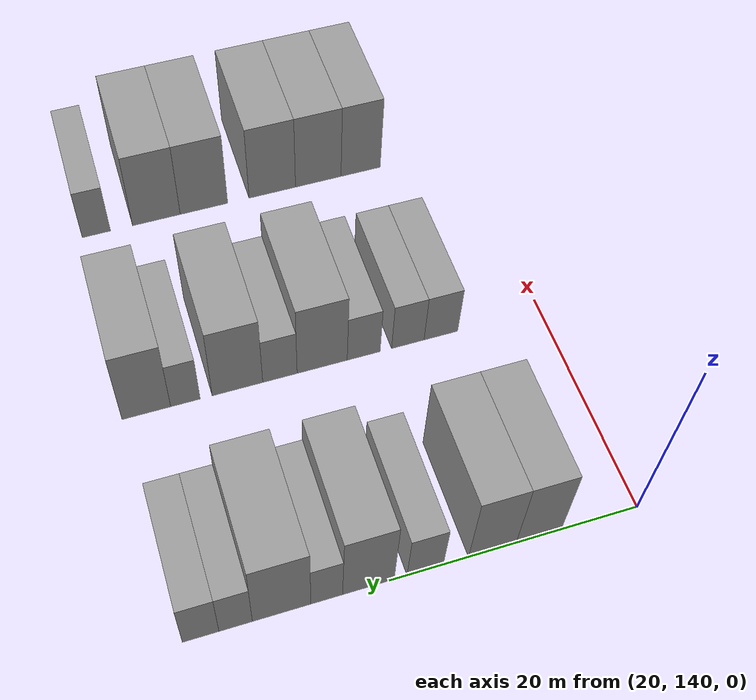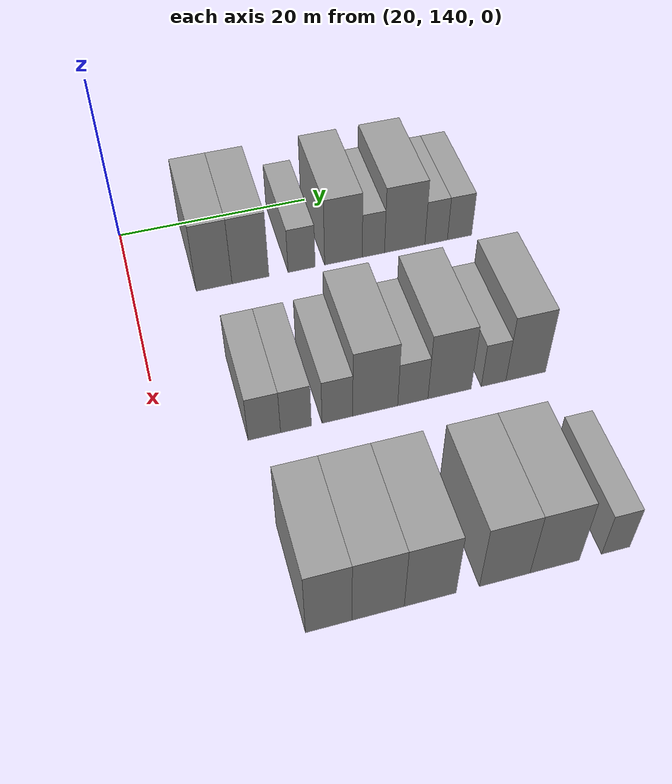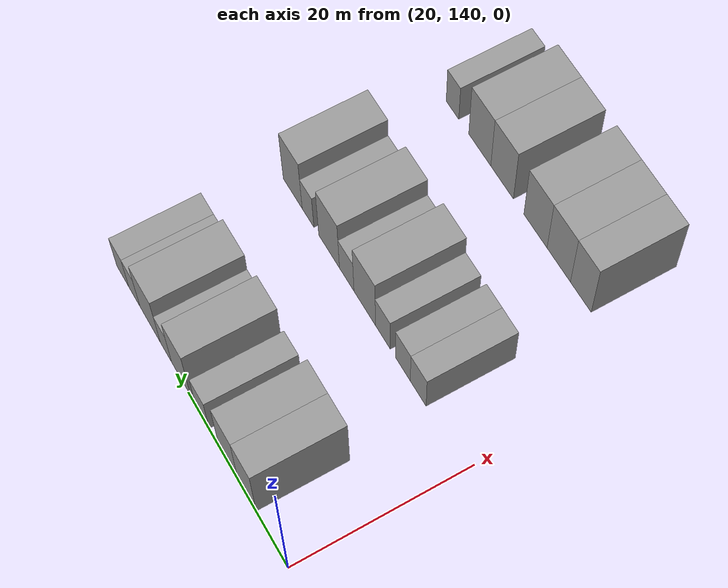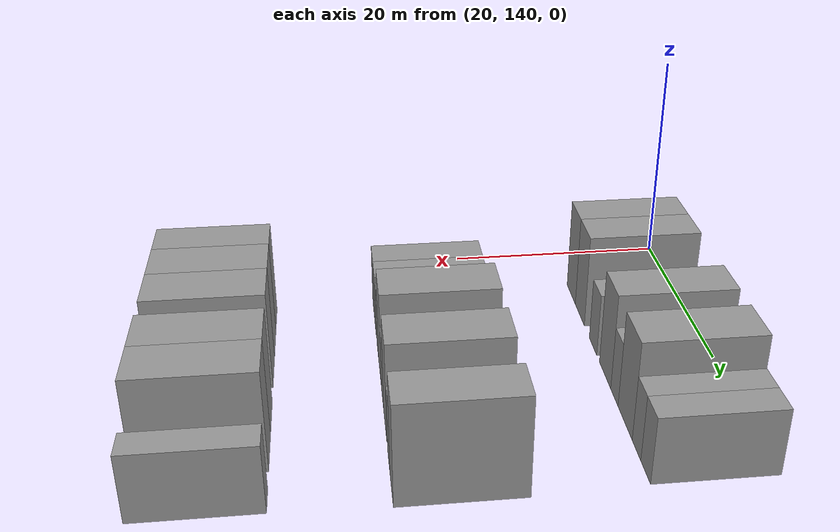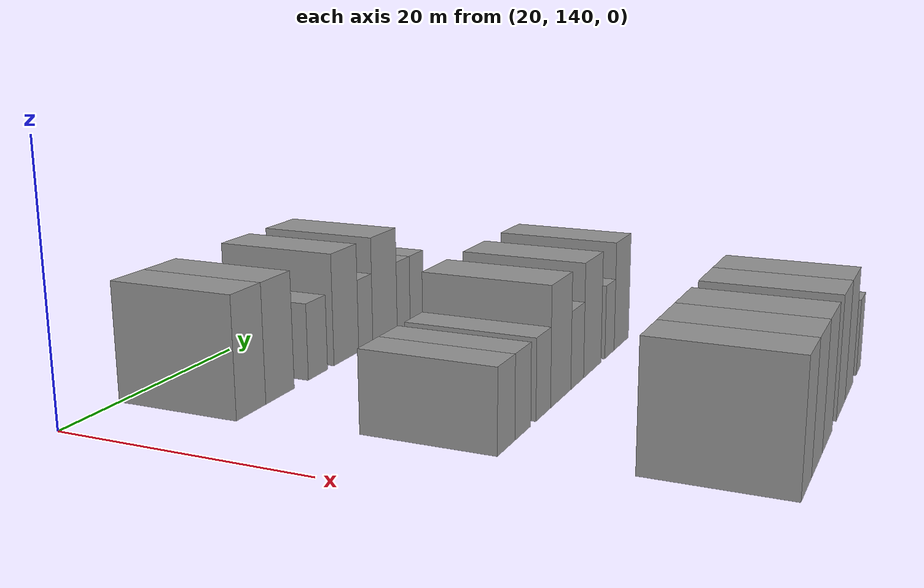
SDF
<sdf version="1.6">
 <world name="default">
  <model name="building_94">
   <static>1</static>
   <pose>25.0000 148.1023 0 0.000000 0.000000 0.000000</pose>
   <link name="link">
    <pose>0 0 4.50 0 0 0</pose>
    <collision name="collision"><geometry><box><size>10.0000 3.6670 9.0000</size></box></geometry></collision>
    <visual name="visual">
     <cast_shadows>0</cast_shadows>
     <geometry><box><size>10.0000 3.6670 9.0000</size></box></geometry>
     <material>
      <script>
       <uri>model://grey_wall/materials/scripts</uri>
       <uri>model://grey_wall/materials/textures</uri>
       <name>vrc/grey_wall</name>
      </script>
     </material>
    </visual>
   </link>
  </model>
  <model name="building_95">
   <static>1</static>
   <pose>25.0000 151.8458 0 0.000000 0.000000 0.000000</pose>
   <link name="link">
    <pose>0 0 4.50 0 0 0</pose>
    <collision name="collision"><geometry><box><size>10.0000 3.8200 9.0000</size></box></geometry></collision>
    <visual name="visual">
     <cast_shadows>0</cast_shadows>
     <geometry><box><size>10.0000 3.8200 9.0000</size></box></geometry>
     <material>
      <script>
       <uri>model://grey_wall/materials/scripts</uri>
       <uri>model://grey_wall/materials/textures</uri>
       <name>vrc/grey_wall</name>
      </script>
     </material>
    </visual>
   </link>
  </model>
  <model name="building_96">
   <static>1</static>
   <pose>25.0000 157.1826 0 0.000000 0.000000 0.000000</pose>
   <link name="link">
    <pose>0 0 3.00 0 0 0</pose>
    <collision name="collision"><geometry><box><size>10.0000 2.8535 6.0000</size></box></geometry></collision>
    <visual name="visual">
     <cast_shadows>0</cast_shadows>
     <geometry><box><size>10.0000 2.8535 6.0000</size></box></geometry>
     <material>
      <script>
       <uri>model://grey_wall/materials/scripts</uri>
       <uri>model://grey_wall/materials/textures</uri>
       <name>vrc/grey_wall</name>
      </script>
     </material>
    </visual>
   </link>
  </model>
  <model name="building_97">
   <static>1</static>
   <pose>25.0000 161.6057 0 0.000000 0.000000 0.000000</pose>
   <link name="link">
    <pose>0 0 4.50 0 0 0</pose>
    <collision name="collision"><geometry><box><size>10.0000 3.9927 9.0000</size></box></geometry></collision>
    <visual name="visual">
     <cast_shadows>0</cast_shadows>
     <geometry><box><size>10.0000 3.9927 9.0000</size></box></geometry>
     <material>
      <script>
       <uri>model://grey_wall/materials/scripts</uri>
       <uri>model://grey_wall/materials/textures</uri>
       <name>vrc/grey_wall</name>
      </script>
     </material>
    </visual>
   </link>
  </model>
  <model name="building_98">
   <static>1</static>
   <pose>25.0000 164.8138 0 0.000000 0.000000 0.000000</pose>
   <link name="link">
    <pose>0 0 3.00 0 0 0</pose>
    <collision name="collision"><geometry><box><size>10.0000 2.4236 6.0000</size></box></geometry></collision>
    <visual name="visual">
     <cast_shadows>0</cast_shadows>
     <geometry><box><size>10.0000 2.4236 6.0000</size></box></geometry>
     <material>
      <script>
       <uri>model://grey_wall/materials/scripts</uri>
       <uri>model://grey_wall/materials/textures</uri>
       <name>vrc/grey_wall</name>
      </script>
     </material>
    </visual>
   </link>
  </model>
  <model name="building_99">
   <static>1</static>
   <pose>25.0000 168.2265 0 0.000000 0.000000 0.000000</pose>
   <link name="link">
    <pose>0 0 4.50 0 0 0</pose>
    <collision name="collision"><geometry><box><size>10.0000 4.4019 9.0000</size></box></geometry></collision>
    <visual name="visual">
     <cast_shadows>0</cast_shadows>
     <geometry><box><size>10.0000 4.4019 9.0000</size></box></geometry>
     <material>
      <script>
       <uri>model://grey_wall/materials/scripts</uri>
       <uri>model://grey_wall/materials/textures</uri>
       <name>vrc/grey_wall</name>
      </script>
     </material>
    </visual>
   </link>
  </model>
  <model name="building_100">
   <static>1</static>
   <pose>25.0000 171.6701 0 0.000000 0.000000 0.000000</pose>
   <link name="link">
    <pose>0 0 3.00 0 0 0</pose>
    <collision name="collision"><geometry><box><size>10.0000 2.4854 6.0000</size></box></geometry></collision>
    <visual name="visual">
     <cast_shadows>0</cast_shadows>
     <geometry><box><size>10.0000 2.4854 6.0000</size></box></geometry>
     <material>
      <script>
       <uri>model://grey_wall/materials/scripts</uri>
       <uri>model://grey_wall/materials/textures</uri>
       <name>vrc/grey_wall</name>
      </script>
     </material>
    </visual>
   </link>
  </model>
  <model name="building_101">
   <static>1</static>
   <pose>25.0000 174.2601 0 0.000000 0.000000 0.000000</pose>
   <link name="link">
    <pose>0 0 3.00 0 0 0</pose>
    <collision name="collision"><geometry><box><size>10.0000 2.6946 6.0000</size></box></geometry></collision>
    <visual name="visual">
     <cast_shadows>0</cast_shadows>
     <geometry><box><size>10.0000 2.6946 6.0000</size></box></geometry>
     <material>
      <script>
       <uri>model://grey_wall/materials/scripts</uri>
       <uri>model://grey_wall/materials/textures</uri>
       <name>vrc/grey_wall</name>
      </script>
     </material>
    </visual>
   </link>
  </model>
  <model name="building_222">
   <static>1</static>
   <pose>44.0000 148.9173 0 0.000000 0.000000 0.000000</pose>
   <link name="link">
    <pose>0 0 3.00 0 0 0</pose>
    <collision name="collision"><geometry><box><size>10.0000 2.9948 6.0000</size></box></geometry></collision>
    <visual name="visual">
     <cast_shadows>0</cast_shadows>
     <geometry><box><size>10.0000 2.9948 6.0000</size></box></geometry>
     <material>
      <script>
       <uri>model://grey_wall/materials/scripts</uri>
       <uri>model://grey_wall/materials/textures</uri>
       <name>vrc/grey_wall</name>
      </script>
     </material>
    </visual>
   </link>
  </model>
  <model name="building_223">
   <static>1</static>
   <pose>44.0000 151.8468 0 0.000000 0.000000 0.000000</pose>
   <link name="link">
    <pose>0 0 3.00 0 0 0</pose>
    <collision name="collision"><geometry><box><size>10.0000 2.8642 6.0000</size></box></geometry></collision>
    <visual name="visual">
     <cast_shadows>0</cast_shadows>
     <geometry><box><size>10.0000 2.8642 6.0000</size></box></geometry>
     <material>
      <script>
       <uri>model://grey_wall/materials/scripts</uri>
       <uri>model://grey_wall/materials/textures</uri>
       <name>vrc/grey_wall</name>
      </script>
     </material>
    </visual>
   </link>
  </model>
  <model name="building_224">
   <static>1</static>
   <pose>44.0000 155.7171 0 0.000000 0.000000 0.000000</pose>
   <link name="link">
    <pose>0 0 3.00 0 0 0</pose>
    <collision name="collision"><geometry><box><size>10.0000 2.8763 6.0000</size></box></geometry></collision>
    <visual name="visual">
     <cast_shadows>0</cast_shadows>
     <geometry><box><size>10.0000 2.8763 6.0000</size></box></geometry>
     <material>
      <script>
       <uri>model://grey_wall/materials/scripts</uri>
       <uri>model://grey_wall/materials/textures</uri>
       <name>vrc/grey_wall</name>
      </script>
     </material>
    </visual>
   </link>
  </model>
  <model name="building_225">
   <static>1</static>
   <pose>44.0000 159.3083 0 0.000000 0.000000 0.000000</pose>
   <link name="link">
    <pose>0 0 4.50 0 0 0</pose>
    <collision name="collision"><geometry><box><size>10.0000 4.3061 9.0000</size></box></geometry></collision>
    <visual name="visual">
     <cast_shadows>0</cast_shadows>
     <geometry><box><size>10.0000 4.3061 9.0000</size></box></geometry>
     <material>
      <script>
       <uri>model://grey_wall/materials/scripts</uri>
       <uri>model://grey_wall/materials/textures</uri>
       <name>vrc/grey_wall</name>
      </script>
     </material>
    </visual>
   </link>
  </model>
  <model name="building_226">
   <static>1</static>
   <pose>44.0000 162.9239 0 0.000000 0.000000 0.000000</pose>
   <link name="link">
    <pose>0 0 3.00 0 0 0</pose>
    <collision name="collision"><geometry><box><size>10.0000 2.9250 6.0000</size></box></geometry></collision>
    <visual name="visual">
     <cast_shadows>0</cast_shadows>
     <geometry><box><size>10.0000 2.9250 6.0000</size></box></geometry>
     <material>
      <script>
       <uri>model://grey_wall/materials/scripts</uri>
       <uri>model://grey_wall/materials/textures</uri>
       <name>vrc/grey_wall</name>
      </script>
     </material>
    </visual>
   </link>
  </model>
  <model name="building_227">
   <static>1</static>
   <pose>44.0000 166.5088 0 0.000000 0.000000 0.000000</pose>
   <link name="link">
    <pose>0 0 4.50 0 0 0</pose>
    <collision name="collision"><geometry><box><size>10.0000 4.2447 9.0000</size></box></geometry></collision>
    <visual name="visual">
     <cast_shadows>0</cast_shadows>
     <geometry><box><size>10.0000 4.2447 9.0000</size></box></geometry>
     <material>
      <script>
       <uri>model://grey_wall/materials/scripts</uri>
       <uri>model://grey_wall/materials/textures</uri>
       <name>vrc/grey_wall</name>
      </script>
     </material>
    </visual>
   </link>
  </model>
  <model name="building_228">
   <static>1</static>
   <pose>44.0000 170.8523 0 0.000000 0.000000 0.000000</pose>
   <link name="link">
    <pose>0 0 3.00 0 0 0</pose>
    <collision name="collision"><geometry><box><size>10.0000 2.4423 6.0000</size></box></geometry></collision>
    <visual name="visual">
     <cast_shadows>0</cast_shadows>
     <geometry><box><size>10.0000 2.4423 6.0000</size></box></geometry>
     <material>
      <script>
       <uri>model://grey_wall/materials/scripts</uri>
       <uri>model://grey_wall/materials/textures</uri>
       <name>vrc/grey_wall</name>
      </script>
     </material>
    </visual>
   </link>
  </model>
  <model name="building_229">
   <static>1</static>
   <pose>44.0000 174.0675 0 0.000000 0.000000 0.000000</pose>
   <link name="link">
    <pose>0 0 4.50 0 0 0</pose>
    <collision name="collision"><geometry><box><size>10.0000 3.9883 9.0000</size></box></geometry></collision>
    <visual name="visual">
     <cast_shadows>0</cast_shadows>
     <geometry><box><size>10.0000 3.9883 9.0000</size></box></geometry>
     <material>
      <script>
       <uri>model://grey_wall/materials/scripts</uri>
       <uri>model://grey_wall/materials/textures</uri>
       <name>vrc/grey_wall</name>
      </script>
     </material>
    </visual>
   </link>
  </model>
  <model name="building_337">
   <static>1</static>
   <pose>63.0000 149.7598 0 0.000000 0.000000 0.000000</pose>
   <link name="link">
    <pose>0 0 4.50 0 0 0</pose>
    <collision name="collision"><geometry><box><size>10.0000 3.7965 9.0000</size></box></geometry></collision>
    <visual name="visual">
     <cast_shadows>0</cast_shadows>
     <geometry><box><size>10.0000 3.7965 9.0000</size></box></geometry>
     <material>
      <script>
       <uri>model://grey_wall/materials/scripts</uri>
       <uri>model://grey_wall/materials/textures</uri>
       <name>vrc/grey_wall</name>
      </script>
     </material>
    </visual>
   </link>
  </model>
  <model name="building_338">
   <static>1</static>
   <pose>63.0000 153.8375 0 0.000000 0.000000 0.000000</pose>
   <link name="link">
    <pose>0 0 4.50 0 0 0</pose>
    <collision name="collision"><geometry><box><size>10.0000 4.3589 9.0000</size></box></geometry></collision>
    <visual name="visual">
     <cast_shadows>0</cast_shadows>
     <geometry><box><size>10.0000 4.3589 9.0000</size></box></geometry>
     <material>
      <script>
       <uri>model://grey_wall/materials/scripts</uri>
       <uri>model://grey_wall/materials/textures</uri>
       <name>vrc/grey_wall</name>
      </script>
     </material>
    </visual>
   </link>
  </model>
  <model name="building_339">
   <static>1</static>
   <pose>63.0000 158.2126 0 0.000000 0.000000 0.000000</pose>
   <link name="link">
    <pose>0 0 4.50 0 0 0</pose>
    <collision name="collision"><geometry><box><size>10.0000 4.3913 9.0000</size></box></geometry></collision>
    <visual name="visual">
     <cast_shadows>0</cast_shadows>
     <geometry><box><size>10.0000 4.3913 9.0000</size></box></geometry>
     <material>
      <script>
       <uri>model://grey_wall/materials/scripts</uri>
       <uri>model://grey_wall/materials/textures</uri>
       <name>vrc/grey_wall</name>
      </script>
     </material>
    </visual>
   </link>
  </model>
  <model name="building_340">
   <static>1</static>
   <pose>63.0000 164.6077 0 0.000000 0.000000 0.000000</pose>
   <link name="link">
    <pose>0 0 4.50 0 0 0</pose>
    <collision name="collision"><geometry><box><size>10.0000 4.3989 9.0000</size></box></geometry></collision>
    <visual name="visual">
     <cast_shadows>0</cast_shadows>
     <geometry><box><size>10.0000 4.3989 9.0000</size></box></geometry>
     <material>
      <script>
       <uri>model://grey_wall/materials/scripts</uri>
       <uri>model://grey_wall/materials/textures</uri>
       <name>vrc/grey_wall</name>
      </script>
     </material>
    </visual>
   </link>
  </model>
  <model name="building_341">
   <static>1</static>
   <pose>63.0000 168.9882 0 0.000000 0.000000 0.000000</pose>
   <link name="link">
    <pose>0 0 4.50 0 0 0</pose>
    <collision name="collision"><geometry><box><size>10.0000 4.3622 9.0000</size></box></geometry></collision>
    <visual name="visual">
     <cast_shadows>0</cast_shadows>
     <geometry><box><size>10.0000 4.3622 9.0000</size></box></geometry>
     <material>
      <script>
       <uri>model://grey_wall/materials/scripts</uri>
       <uri>model://grey_wall/materials/textures</uri>
       <name>vrc/grey_wall</name>
      </script>
     </material>
    </visual>
   </link>
  </model>
  <model name="building_342">
   <static>1</static>
   <pose>63.0000 174.4399 0 0.000000 0.000000 0.000000</pose>
   <link name="link">
    <pose>0 0 3.00 0 0 0</pose>
    <collision name="collision"><geometry><box><size>10.0000 2.5412 6.0000</size></box></geometry></collision>
    <visual name="visual">
     <cast_shadows>0</cast_shadows>
     <geometry><box><size>10.0000 2.5412 6.0000</size></box></geometry>
     <material>
      <script>
       <uri>model://grey_wall/materials/scripts</uri>
       <uri>model://grey_wall/materials/textures</uri>
       <name>vrc/grey_wall</name>
      </script>
     </material>
    </visual>
   </link>
  </model>
 </world>
</sdf>
